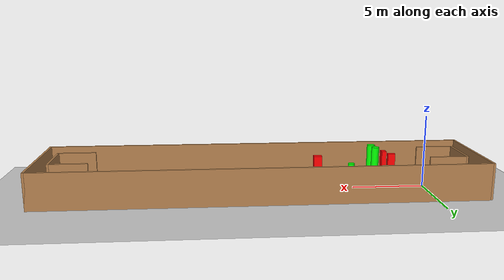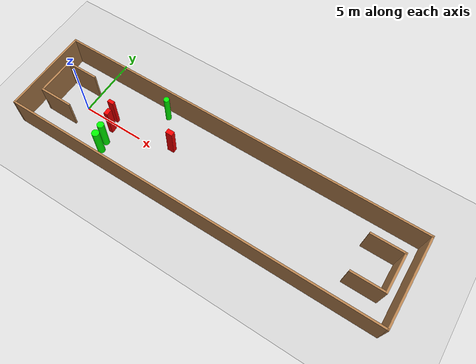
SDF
<sdf version="1.7">
 <world name="default">
  <light name="sun" type="directional">
   <pose>0 0 10 0 -0 0</pose>
   <diffuse>0.8 0.8 0.8 1</diffuse>
   <specular>0.2 0.2 0.2 1</specular>
   <attenuation>
    <range>1000</range>
    <constant>0.9</constant>
    <linear>0.01</linear>
    <quadratic>0.001</quadratic>
   </attenuation>
   <direction>-0.5 0.1 -0.9</direction>
   <spot><inner_angle>0</inner_angle><outer_angle>0</outer_angle><falloff>0</falloff></spot>
  </light>
  <model name="ground_plane">
   <static>1</static>
   <link name="link">
    <collision name="collision">
     <geometry><plane><normal>0 0 1</normal><size>100 100</size></plane></geometry>
     <surface>
      <contact><collide_bitmask>65535</collide_bitmask></contact>
      <friction><ode><mu>100</mu><mu2>50</mu2></ode></friction>
     </surface>
    </collision>
    <visual name="visual">
     <cast_shadows>0</cast_shadows>
     <geometry><plane><normal>0 0 1</normal><size>100 100</size></plane></geometry>
     <material>
      <script><uri>file://media/materials/scripts/gazebo.material</uri><name>Gazebo/Grey</name></script>
     </material>
    </visual>
   </link>
  </model>
  <gravity>0 0 -9.8</gravity>
  <magnetic_field>6e-06 2.3e-05 -4.2e-05</magnetic_field>
  <atmosphere type="adiabatic"/>
  <physics type="ode">
   <max_step_size>0.001</max_step_size>
   <real_time_factor>1</real_time_factor>
   <real_time_update_rate>1000</real_time_update_rate>
  </physics>
  <scene><ambient>0.4 0.4 0.4 1</ambient><background>0.7 0.7 0.7 1</background><shadows>1</shadows></scene>
  <spherical_coordinates>
   <surface_model>EARTH_WGS84</surface_model>
   <latitude_deg>0</latitude_deg>
   <longitude_deg>0</longitude_deg>
   <elevation>0</elevation>
   <heading_deg>0</heading_deg>
  </spherical_coordinates>
  <model name="my_base_walls">
   <link name="Wall_0">
    <collision name="Wall_0_Collision">
     <geometry><box><size>7.15 0.15 2.5</size></box></geometry>
     <pose>0 0 1.25 0 -0 0</pose>
    </collision>
    <visual name="Wall_0_Visual">
     <pose>0 0 1.25 0 -0 0</pose>
     <geometry><box><size>7.15 0.15 2.5</size></box></geometry>
     <material>
      <script><uri>file://media/materials/scripts/gazebo.material</uri><name>Gazebo/Wood</name></script>
      <ambient>1 1 1 1</ambient>
     </material>
     <meta><layer>0</layer></meta>
    </visual>
    <pose>-15 0 0 0 -0 1.5708</pose>
   </link>
   <link name="Wall_10">
    <collision name="Wall_10_Collision">
     <geometry><box><size>2.65 0.15 2.5</size></box></geometry>
     <pose>0 0 1.25 0 -0 0</pose>
    </collision>
    <visual name="Wall_10_Visual">
     <pose>0 0 1.25 0 -0 0</pose>
     <geometry><box><size>2.65 0.15 2.5</size></box></geometry>
     <material>
      <script><uri>file://media/materials/scripts/gazebo.material</uri><name>Gazebo/Wood</name></script>
      <ambient>1 1 1 1</ambient>
     </material>
     <meta><layer>0</layer></meta>
    </visual>
    <pose>-12.75 -1.5 0 0 -0 0</pose>
   </link>
   <link name="Wall_12">
    <collision name="Wall_12_Collision">
     <geometry><box><size>2.65 0.15 2.5</size></box></geometry>
     <pose>0 0 1.25 0 -0 0</pose>
    </collision>
    <visual name="Wall_12_Visual">
     <pose>0 0 1.25 0 -0 0</pose>
     <geometry><box><size>2.65 0.15 2.5</size></box></geometry>
     <material>
      <script><uri>file://media/materials/scripts/gazebo.material</uri><name>Gazebo/Wood</name></script>
      <ambient>1 1 1 1</ambient>
     </material>
     <meta><layer>0</layer></meta>
    </visual>
    <pose>-12.75 1.5 0 0 -0 0</pose>
   </link>
   <link name="Wall_14">
    <collision name="Wall_14_Collision">
     <geometry><box><size>3.15 0.15 2.5</size></box></geometry>
     <pose>0 0 1.25 0 -0 0</pose>
    </collision>
    <visual name="Wall_14_Visual">
     <pose>0 0 1.25 0 -0 0</pose>
     <geometry><box><size>3.15 0.15 2.5</size></box></geometry>
     <material>
      <script><uri>file://media/materials/scripts/gazebo.material</uri><name>Gazebo/Wood</name></script>
      <ambient>1 1 1 1</ambient>
     </material>
     <meta><layer>0</layer></meta>
    </visual>
    <pose>14 0 0 0 -0 -1.5708</pose>
   </link>
   <link name="Wall_15">
    <collision name="Wall_15_Collision">
     <geometry><box><size>2.65 0.15 2.5</size></box></geometry>
     <pose>0 0 1.25 0 -0 0</pose>
    </collision>
    <visual name="Wall_15_Visual">
     <pose>0 0 1.25 0 -0 0</pose>
     <geometry><box><size>2.65 0.15 2.5</size></box></geometry>
     <material>
      <script><uri>file://media/materials/scripts/gazebo.material</uri><name>Gazebo/Wood</name></script>
      <ambient>1 1 1 1</ambient>
     </material>
     <meta><layer>0</layer></meta>
    </visual>
    <pose>12.75 -1.5 0 0 -0 3.14159</pose>
   </link>
   <link name="Wall_17">
    <collision name="Wall_17_Collision">
     <geometry><box><size>2.65 0.15 2.5</size></box></geometry>
     <pose>0 0 1.25 0 -0 0</pose>
    </collision>
    <visual name="Wall_17_Visual">
     <pose>0 0 1.25 0 -0 0</pose>
     <geometry><box><size>2.65 0.15 2.5</size></box></geometry>
     <material>
      <script><uri>file://media/materials/scripts/gazebo.material</uri><name>Gazebo/Wood</name></script>
      <ambient>1 1 1 1</ambient>
     </material>
     <meta><layer>0</layer></meta>
    </visual>
    <pose>12.75 1.5 0 0 -0 3.14159</pose>
   </link>
   <link name="Wall_2">
    <collision name="Wall_2_Collision">
     <geometry><box><size>30.15 0.15 2.5</size></box></geometry>
     <pose>0 0 1.25 0 -0 0</pose>
    </collision>
    <visual name="Wall_2_Visual">
     <pose>0 0 1.25 0 -0 0</pose>
     <geometry><box><size>30.15 0.15 2.5</size></box></geometry>
     <material>
      <script><uri>file://media/materials/scripts/gazebo.material</uri><name>Gazebo/Wood</name></script>
      <ambient>1 1 1 1</ambient>
     </material>
     <meta><layer>0</layer></meta>
    </visual>
    <pose>-0 -3.5 0 0 -0 0</pose>
   </link>
   <link name="Wall_4">
    <collision name="Wall_4_Collision">
     <geometry><box><size>30.15 0.15 2.5</size></box></geometry>
     <pose>0 0 1.25 0 -0 0</pose>
    </collision>
    <visual name="Wall_4_Visual">
     <pose>0 0 1.25 0 -0 0</pose>
     <geometry><box><size>30.15 0.15 2.5</size></box></geometry>
     <material>
      <script><uri>file://media/materials/scripts/gazebo.material</uri><name>Gazebo/Wood</name></script>
      <ambient>1 1 1 1</ambient>
     </material>
     <meta><layer>0</layer></meta>
    </visual>
    <pose>-0 3.5 0 0 -0 0</pose>
   </link>
   <link name="Wall_6">
    <collision name="Wall_6_Collision">
     <geometry><box><size>7.15 0.15 2.5</size></box></geometry>
     <pose>0 0 1.25 0 -0 0</pose>
    </collision>
    <visual name="Wall_6_Visual">
     <pose>0 0 1.25 0 -0 0</pose>
     <geometry><box><size>7.15 0.15 2.5</size></box></geometry>
     <material>
      <script><uri>file://media/materials/scripts/gazebo.material</uri><name>Gazebo/Wood</name></script>
      <ambient>1 1 1 1</ambient>
     </material>
     <meta><layer>0</layer></meta>
    </visual>
    <pose>15 0 0 0 -0 -1.5708</pose>
   </link>
   <link name="Wall_9">
    <collision name="Wall_9_Collision">
     <geometry><box><size>3.15 0.15 2.5</size></box></geometry>
     <pose>0 0 1.25 0 -0 0</pose>
    </collision>
    <visual name="Wall_9_Visual">
     <pose>0 0 1.25 0 -0 0</pose>
     <geometry><box><size>3.15 0.15 2.5</size></box></geometry>
     <material>
      <script><uri>file://media/materials/scripts/gazebo.material</uri><name>Gazebo/Wood</name></script>
      <ambient>1 1 1 1</ambient>
     </material>
     <meta><layer>0</layer></meta>
    </visual>
    <pose>-14 0 0 0 -0 -1.5708</pose>
   </link>
   <static>1</static>
   <pose>11.5 0 0 0 -0 0</pose>
  </model>
  <model name="cylinder1">
   <static>1</static>
   <link name="link">
    <inertial>
     <mass>1</mass>
     <inertia><ixx>0.5</ixx><ixy>0</ixy><ixz>0</ixz><iyy>0.5</iyy><iyz>0</iyz><izz>1</izz></inertia>
    </inertial>
    <collision name="collision">
     <geometry><cylinder><radius>0.2712114635043593</radius><length>2.5</length></cylinder></geometry>
    </collision>
    <visual name="visual">
     <geometry><cylinder><radius>0.2712114635043593</radius><length>2.5</length></cylinder></geometry>
     <material>
      <ambient>0 1 0 1</ambient>
      <diffuse>0 1 0 1</diffuse>
      <specular>0.1 0.1 0.1 1</specular>
      <emissive>0 0 0 0</emissive>
     </material>
    </visual>
   </link>
   <pose>3.0698181293691764 -1.6106544757485461 1.25 0 0 0</pose>
  </model>
  <model name="cylinder2">
   <static>1</static>
   <link name="link">
    <inertial>
     <mass>1</mass>
     <inertia><ixx>0.5</ixx><ixy>0</ixy><ixz>0</ixz><iyy>0.5</iyy><iyz>0</iyz><izz>1</izz></inertia>
    </inertial>
    <collision name="collision">
     <geometry><cylinder><radius>0.21780841635902107</radius><length>2.5</length></cylinder></geometry>
    </collision>
    <visual name="visual">
     <geometry><cylinder><radius>0.21780841635902107</radius><length>2.5</length></cylinder></geometry>
     <material>
      <ambient>0 1 0 1</ambient>
      <diffuse>0 1 0 1</diffuse>
      <specular>0.1 0.1 0.1 1</specular>
      <emissive>0 0 0 0</emissive>
     </material>
    </visual>
   </link>
   <pose>5.8068298450802 2.791991918742216 1.25 0 0 0</pose>
  </model>
  <model name="cylinder3">
   <static>1</static>
   <link name="link">
    <inertial>
     <mass>1</mass>
     <inertia><ixx>0.5</ixx><ixy>0</ixy><ixz>0</ixz><iyy>0.5</iyy><iyz>0</iyz><izz>1</izz></inertia>
    </inertial>
    <collision name="collision">
     <geometry><cylinder><radius>0.28647448527410063</radius><length>2.5</length></cylinder></geometry>
    </collision>
    <visual name="visual">
     <geometry><cylinder><radius>0.28647448527410063</radius><length>2.5</length></cylinder></geometry>
     <material>
      <ambient>0 1 0 1</ambient>
      <diffuse>0 1 0 1</diffuse>
      <specular>0.1 0.1 0.1 1</specular>
      <emissive>0 0 0 0</emissive>
     </material>
    </visual>
   </link>
   <pose>3.204263495176095 -2.3562252584878087 1.25 0 0 0</pose>
  </model>
  <model name="box1">
   <static>1</static>
   <link name="link">
    <inertial>
     <mass>1</mass>
     <inertia><ixx>0.083</ixx><ixy>0</ixy><ixz>0</ixz><iyy>0.083</iyy><iyz>0</iyz><izz>0.083</izz></inertia>
    </inertial>
    <collision name="collision">
     <geometry><box><size>0.3227271092865322 0.5118468618957399 2.5</size></box></geometry>
    </collision>
    <visual name="visual">
     <geometry><box><size>0.3227271092865322 0.5118468618957399 2.5</size></box></geometry>
     <material>
      <ambient>1 0 0 1</ambient>
      <diffuse>1 0 0 1</diffuse>
      <specular>0.1 0.1 0.1 1</specular>
      <emissive>0 0 0 0</emissive>
     </material>
    </visual>
    <sensor name="my_contact" type="contact">
     <contact><collision>box_collision</collision><topic>__default_topic__</topic></contact>
    </sensor>
   </link>
   <pose>2.7996024556789045 -0.4384387406035062 1.25 0 0 0</pose>
  </model>
  <model name="box2">
   <static>1</static>
   <link name="link">
    <inertial>
     <mass>1</mass>
     <inertia><ixx>0.083</ixx><ixy>0</ixy><ixz>0</ixz><iyy>0.083</iyy><iyz>0</iyz><izz>0.083</izz></inertia>
    </inertial>
    <collision name="collision">
     <geometry><box><size>0.5479922768190313 0.37719682940380056 2.5</size></box></geometry>
    </collision>
    <visual name="visual">
     <geometry><box><size>0.5479922768190313 0.37719682940380056 2.5</size></box></geometry>
     <material>
      <ambient>1 0 0 1</ambient>
      <diffuse>1 0 0 1</diffuse>
      <specular>0.1 0.1 0.1 1</specular>
      <emissive>0 0 0 0</emissive>
     </material>
    </visual>
    <sensor name="my_contact" type="contact">
     <contact><collision>box_collision</collision><topic>__default_topic__</topic></contact>
    </sensor>
   </link>
   <pose>7.650545763714231 0.6200964869540231 1.25 0 0 0</pose>
  </model>
  <model name="box3">
   <static>1</static>
   <link name="link">
    <inertial>
     <mass>1</mass>
     <inertia><ixx>0.083</ixx><ixy>0</ixy><ixz>0</ixz><iyy>0.083</iyy><iyz>0</iyz><izz>0.083</izz></inertia>
    </inertial>
    <collision name="collision">
     <geometry><box><size>0.4960543166467775 0.2735827811550882 2.5</size></box></geometry>
    </collision>
    <visual name="visual">
     <geometry><box><size>0.4960543166467775 0.2735827811550882 2.5</size></box></geometry>
     <material>
      <ambient>1 0 0 1</ambient>
      <diffuse>1 0 0 1</diffuse>
      <specular>0.1 0.1 0.1 1</specular>
      <emissive>0 0 0 0</emissive>
     </material>
    </visual>
    <sensor name="my_contact" type="contact">
     <contact><collision>box_collision</collision><topic>__default_topic__</topic></contact>
    </sensor>
   </link>
   <pose>2.4743606104436466 0.39386433549726707 1.25 0 0 0</pose>
  </model>
 </world>
</sdf>
